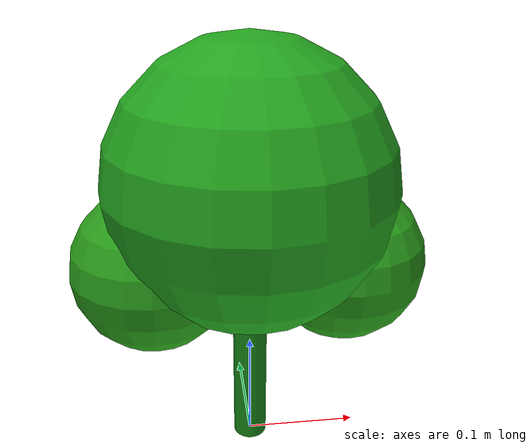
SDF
<?xml version="1.0"?>
<sdf version="1.9">
  <model name="weed_large">
    <static>true</static>
    <link name="weed_link">
      <!-- 太い茎 -->
      <visual name="stem">
        <pose>0 0 0.10 0 0 0</pose>
        <geometry>
          <cylinder><radius>0.015</radius><length>0.20</length></cylinder>
        </geometry>
        <material>
          <ambient>0.08 0.45 0.08 1</ambient>
          <diffuse>0.10 0.55 0.10 1</diffuse>
        </material>
      </visual>
      <!-- 大きな葉群 -->
      <visual name="foliage_main">
        <pose>0 0 0.25 0 0 0</pose>
        <geometry>
          <sphere><radius>0.12</radius></sphere>
        </geometry>
        <material>
          <ambient>0.10 0.55 0.10 1</ambient>
          <diffuse>0.14 0.65 0.12 1</diffuse>
        </material>
      </visual>
      <visual name="foliage_left">
        <pose>-0.08 0 0.18 0 0 0</pose>
        <geometry>
          <sphere><radius>0.07</radius></sphere>
        </geometry>
        <material>
          <ambient>0.12 0.50 0.08 1</ambient>
          <diffuse>0.16 0.62 0.10 1</diffuse>
        </material>
      </visual>
      <visual name="foliage_right">
        <pose>0.08 0 0.18 0 0 0</pose>
        <geometry>
          <sphere><radius>0.07</radius></sphere>
        </geometry>
        <material>
          <ambient>0.12 0.50 0.08 1</ambient>
          <diffuse>0.16 0.62 0.10 1</diffuse>
        </material>
      </visual>
      <!-- コリジョン -->
      <collision name="weed_collision">
        <pose>0 0 0.12 0 0 0</pose>
        <geometry>
          <cylinder><radius>0.12</radius><length>0.24</length></cylinder>
        </geometry>
      </collision>
    </link>
  </model>
</sdf>
